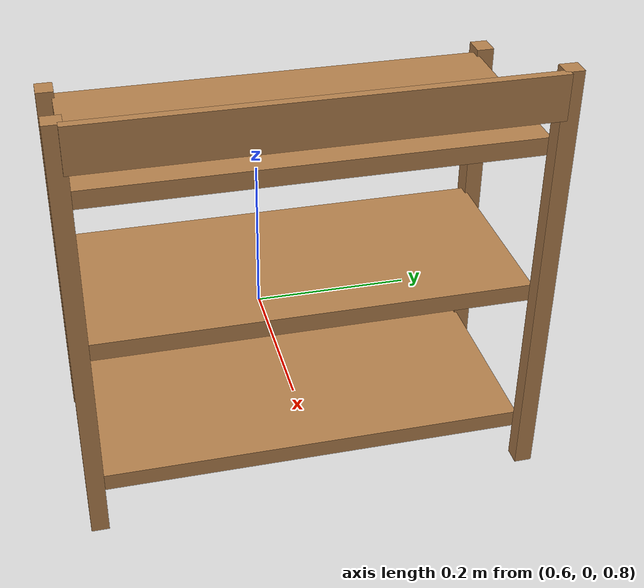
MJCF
<mujoco model="bookshelf_realworld">
  <compiler angle="radian" meshdir="assets" texturedir="assets" />
  <asset>
    <texture type="2d" name="shelf" file="light_wood.png" />
    <material name="shelf_mat" texture="shelf" specular="0.5" shininess="0.5" />
  </asset>
  <worldbody>
    <body name="shelf_row1" pos="0.8 0. 0.80" euler="0 0 1.57">
      <geom name="shelf_base_row1" type="box" size="0.243 0.11 0.01" material="shelf_mat" />
      <body name="shelf_row2" pos="0 0 0.18">
        <geom name="shelf_base_row2" type="box" size="0.243 0.11 0.01" material="shelf_mat" />
      </body>
      <body name="shelf_row3" pos="0 0 0.36">
        <geom name="shelf_base_row3" type="box" size="0.243 0.11 0.01" material="shelf_mat" />
      </body>
      <body name="shelf_column1" pos="-0.25 0.11 0.165">
        <geom name="shelf_column1_geom" type="box" size="0.01 0.0125 0.2125" material="shelf_mat" />
      </body>
      <body name="shelf_column1_rear" pos="-0.25 -0.12 0.20">
        <geom name="shelf_column1_rear_geom" type="box" size="0.01 0.01 0.25" material="shelf_mat" />
      </body>
      <body name="shelf_column2" pos="0.25 0.11 0.165">
        <geom name="shelf_column2_geom" type="box" size="0.01 0.0125 0.2125" material="shelf_mat" />
      </body>
      <body name="shelf_column2_rear" pos="0.25 -0.12 0.20">
        <geom name="shelf_column2_rear_geom" type="box" size="0.01 0.01 0.25" material="shelf_mat" />
      </body>
      <body name="shelf_back" pos="0 -0.13 0.425">
        <geom name="shelf_back_geom" type="box" size="0.245 0.005 0.025" material="shelf_mat" />
      </body>
    </body>
  </worldbody>
</mujoco>
